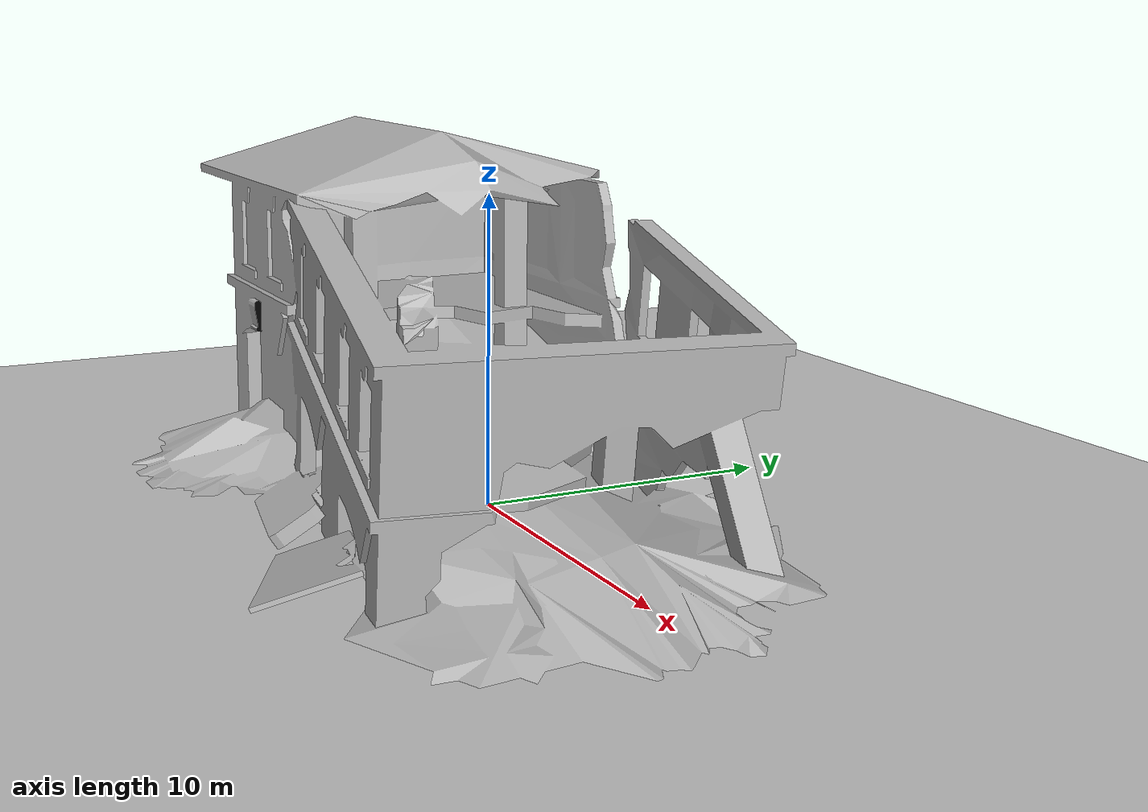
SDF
<sdf version="1.6">
 <world name="default">
  <light name="sun" type="directional">
   <pose>0 0 10 0 -0 0</pose>
   <diffuse>0.8 0.8 0.8 1</diffuse>
   <specular>0.2 0.2 0.2 1</specular>
   <attenuation>
    <range>1000</range>
    <constant>0.9</constant>
    <linear>0.01</linear>
    <quadratic>0.001</quadratic>
   </attenuation>
   <direction>-0.5 0.1 -0.9</direction>
  </light>
  <model name="ground_plane">
   <static>1</static>
   <link name="link">
    <collision name="collision">
     <geometry><plane><normal>0 0 1</normal><size>100 100</size></plane></geometry>
     <surface>
      <contact><collide_bitmask>65535</collide_bitmask></contact>
      <friction><ode><mu>100</mu><mu2>50</mu2></ode></friction>
     </surface>
    </collision>
    <visual name="visual">
     <cast_shadows>0</cast_shadows>
     <geometry><plane><normal>0 0 1</normal><size>100 100</size></plane></geometry>
     <material>
      <script><uri>file://media/materials/scripts/gazebo.material</uri><name>Gazebo/Grey</name></script>
     </material>
    </visual>
   </link>
  </model>
  <gravity>0 0 -9.8</gravity>
  <magnetic_field>6e-06 2.3e-05 -4.2e-05</magnetic_field>
  <atmosphere type="adiabatic"/>
  <physics name="default_physics" default="0" type="ode">
   <max_step_size>0.001</max_step_size>
   <real_time_factor>1</real_time_factor>
   <real_time_update_rate>1000</real_time_update_rate>
  </physics>
  <scene><ambient>0.4 0.4 0.4 1</ambient><background>0.7 0.7 0.7 1</background><shadows>1</shadows></scene>
  <audio><device>default</device></audio>
  <spherical_coordinates>
   <surface_model>EARTH_WGS84</surface_model>
   <latitude_deg>0</latitude_deg>
   <longitude_deg>0</longitude_deg>
   <elevation>0</elevation>
   <heading_deg>0</heading_deg>
  </spherical_coordinates>
  <model name="collapsed_fire_station">
   <static>1</static>
   <link name="link">
    <collision name="collision">
     <geometry><mesh><uri>model://collapsed_fire_station/meshes/collapsed_fire_station.dae</uri></mesh></geometry>
    </collision>
    <visual name="visual">
     <geometry><mesh><uri>model://collapsed_fire_station/meshes/collapsed_fire_station.dae</uri></mesh></geometry>
    </visual>
   </link>
   <pose>-0.038915 -0.617109 0 0 -0 0</pose>
  </model>
  <include><uri>model://bowser2</uri></include>
 </world>
</sdf>

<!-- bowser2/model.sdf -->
<sdf version="1.5">
    <model name="bowser2">
        <pose>0 0 0 0 0 0</pose>
        <static>false</static>
        <link name="bowser2/base_link">
            <inertial>
                <mass>10</mass>
                <inertia> <!-- inertias are tricky to compute -->
                <!-- http://gazebosim.org/tutorials?tut=inertia&cat=build_robot -->
                <ixx>.3735</ixx>
                <ixy>0.0</ixy>            <!-- for a box: ixy = 0 -->
                <ixz>0.0</ixz>            <!-- for a box: ixz = 0 -->
                <iyy>.747</iyy>
                <iyz>0.0</iyz>            <!-- for a box: iyz = 0 -->
                <izz>.9711</izz>
                </inertia>
            </inertial>
            <!-- chassis -->
            <collision name="collision">
                <geometry>
                <box>
                    <size>.9 .6 .3</size>
                </box>
                </geometry>
            </collision>
            <visual name="visual">
                <geometry>
                <box>
                    <size>.9 .6 .3</size>
                </box>
                </geometry>
            </visual>
            <!-- caster -->
            <collision name='caster_collision'>
                <pose>-.35 0 -0.15 0 0 0</pose>
                <geometry>
                    <sphere>
                    <radius>.075</radius>
                </sphere>
                </geometry>
                <surface>
                <friction>
                    <ode>
                    <mu>0</mu>
                    <mu2>0</mu2>
                    <slip1>1.0</slip1>
                    <slip2>1.0</slip2>
                    </ode>
                </friction>
                </surface>
            </collision>
            <visual name='caster_visual'>
                <pose>-.35 0 -.15 0 0 0</pose>
                <geometry>
                <sphere>
                    <radius>.075</radius>
                </sphere>
                </geometry>
            </visual>
        </link>

        <link name="bowser2/front_right_wheel">
            <pose>0.3 -.37 -0.05 0 0 0</pose>
            <inertial>
                <mass>2.6357</mass>
                <pose>0 0 0 0 0 0</pose>
                <inertia>
                    <ixx>0.0246688</ixx>
                    <ixy>0</ixy>
                    <ixz>0</ixz>
                    <iyy>0.0246688</iyy>
                    <iyz>0</iyz>
                    <izz>0.0441058</izz>
                </inertia>
            </inertial>
            <collision name="front_right_wheel_collision">
                <pose>0 0 0 -1.5707 0 0</pose>
                <geometry>
                <cylinder>
                    <radius>0.17775</radius>
                    <length>0.1143</length>
                </cylinder>
                </geometry>
                <surface>
                <friction>
                    <ode>
                    <mu>100000.0</mu>
                    <mu2>100000.0</mu2>
                    <slip1>0.0</slip1>
                    <slip2>0.0</slip2>
                    </ode>
                </friction>
                </surface>
            </collision>
            <visual name="front_right_wheel">
                <pose>0 0 0 -3.14159 0 0</pose>
                <geometry>
                <mesh>
                    <uri>model://husky/meshes/wheel.stl</uri>
                </mesh>
                </geometry>
                <material>
                <script>
                    <name>Gazebo/Grey</name>
                </script>
                </material>
            </visual>
        </link>
        <joint name="bowser2/front_right_joint" type="revolute">
            <parent>bowser2/base_link</parent>
            <child>bowser2/front_right_wheel</child>
            <axis>
                <xyz>0 1 0</xyz>
                <use_parent_model_frame>true</use_parent_model_frame>
            </axis>
            <physics>
                <ode>
                <limit>
                    <cfm>0.000000</cfm>
                    <erp>0.900000</erp>
                </limit>
                </ode>
            </physics>
        </joint>

        <link name="bowser2/front_left_wheel">
            <pose>0.3 .37 -0.05 0 0 0</pose>
            <inertial>
                <mass>2.6357</mass>
                <pose>0 0 0 0 0 0</pose>
                <inertia>
                <ixx>0.0246688</ixx>
                <ixy>0</ixy>
                <ixz>0</ixz>
                <iyy>0.0246688</iyy>
                <iyz>0</iyz>
                <izz>0.0441058</izz>
                </inertia>
            </inertial>
            <collision name="front_left_wheel_collision">
                <pose>0 0 0 -1.5707 0 0</pose>
                <geometry>
                <cylinder>
                    <radius>0.17775</radius>
                    <length>0.1143</length>
                </cylinder>
                </geometry>
                <surface>
                <friction>
                    <ode>
                    <mu>100000.0</mu>
                    <mu2>100000.0</mu2>
                    <slip1>0.0</slip1>
                    <slip2>0.0</slip2>
                    </ode>
                </friction>
                </surface>
            </collision>
            <visual name="front_left_wheel">
                <pose>0 0 0 -3.14159 0 0</pose>
                <geometry>
                <mesh>
                    <uri>model://husky/meshes/wheel.stl</uri>
                </mesh>
                </geometry>
                <material>
                <script>
                    <name>Gazebo/Grey</name>
                </script>
                </material>
            </visual>
        </link>
        <joint name="bowser2/front_left_joint" type="revolute">
            <parent>bowser2/base_link</parent>
            <child>bowser2/front_left_wheel</child>
            <axis>
                <xyz>0 1 0</xyz>
                <use_parent_model_frame>true</use_parent_model_frame>
            </axis>
            <physics>
                <ode>
                <limit>
                    <cfm>0.000000</cfm>
                    <erp>0.900000</erp>
                </limit>
                </ode>
            </physics>
        </joint>

        <!-- IMU sensor -->
        <link name="bowser2/imu_link">
            <visual name="imu_link_visual">
                <geometry>
                    <box>
                        <size> 0.1 0.1 0.1 </size>
                    </box>
                </geometry>
            </visual>
            <collision name="imu_link_collision">
                <geometry>
                    <box>
                        <size> 0.1 0.1 0.1 </size>
                    </box>
                </geometry>
            </collision>

            <sensor name="imu_sensor" type="imu">
                <always_on>true</always_on> <!-- required TRUE -->
                <plugin filename="libgazebo_ros_imu_sensor.so" name="imu_plugin">
                    <robotNamespace>bowser2</robotNamespace>
                    <topicName>imu</topicName>
                    <updateRateHZ>30</updateRateHZ>
                    <frameName>bowser2/imu_link</frameName>
                    <initialOrientationAsReference>false</initialOrientationAsReference>
                </plugin>
            </sensor>
        </link>
        <joint name="bowser2/imu_joint" type="fixed">
            <parent>bowser2/base_link</parent>
            <child>bowser2/imu_link</child>
        </joint>

        <!-- differential drive plugin; publishes odom frame-->
        <plugin filename="libgazebo_ros_diff_drive.so" name="diff_drive_controller">
            <robotNamespace>bowser2</robotNamespace>
            <rosDebugLevel>debug</rosDebugLevel>

            <!-- 'physical' characteristics -->
            <leftJoint>bowser2/front_left_joint</leftJoint>
            <rightJoint>bowser2/front_right_joint</rightJoint>
            <wheelSeparation>0.74</wheelSeparation>
            <wheelDiameter>0.3555</wheelDiameter>
            <wheelTorque>20</wheelTorque>   <!-- in Nm -->

            <!-- plugin characteristics -->
            <odometrySource>world</odometrySource>
            <publishOdom>true</publishOdom>
            <updateRate>100</updateRate>

            <!-- tf -->
            <publishTf>true</publishTf> <!-- publish the transforms -->
            <publishOdomTF>true</publishOdomTF>
            <publishWheelTF>true</publishWheelTF>
            <odometryFrame>bowser2/odom</odometryFrame>
            <robotBaseFrame>bowser2/base_link</robotBaseFrame>

            <!-- ros messaging -->
            <commandTopic>/cmd_vel</commandTopic> <!-- listens to -->
            <odometryTopic>odom</odometryTopic> <!-- publishes on -->
        </plugin>

        <joint name="bowser2/camera_joint" type="fixed">
            <parent>bowser2/base_link</parent>
            <child>bowser2/camera_link</child>
            <axis>
                <xyz>1 0 0</xyz>
                <use_parent_model_frame>true</use_parent_model_frame>
            </axis>
        </joint>
        <!-- houses the depth camera sensor -->
        <link name="bowser2/camera_link">
            <!-- "physical" description of camera -->
            <pose>0 0 0.35 0 0 0</pose>
            <collision name="camera_collision">
                <pose>0 0 0.1 0 0 0</pose>
                <geometry>
                    <box>
                    <size>.1 0.1 0.1</size>
                    </box>
                </geometry>
            </collision>
            <visual name="camera_visual">
                <pose>0 0 0 0 0 0</pose>
                <geometry>
                    <box>
                    <size>.1 0.1 0.1</size>
                    </box>
                </geometry>
                <material>
                    <script>
                    <name>Gazebo/Grey</name>
                    </script>
                </material>
            </visual>

            <sensor type="depth" name="depth_sensor">
                <!-- Set always_on only sensor, not on plugin -->
                <always_on>0</always_on>
                <!-- Set update_rate only sensor, not on plugin -->
                <updateRate>20</updateRate>

                <camera name="bowser2_dc">
                    <horizontal_fov>1.57079</horizontal_fov>
                    <image>
                        <width>640</width>
                        <height>480</height>
                    </image>
                    <clip>
                        <near>0.5</near>
                        <far>20</far>
                    </clip>
                    <!-- no distortions: "ideal" camera -->
                    <distortion>
                        <k1>0.0</k1>
                        <k2>0.0</k2>
                        <k3>0.0</k3>
                        <p1>0.0</p1>
                        <p2>0.0</p2>
                        <center>0.0 0.0</center>
                    </distortion>
                </camera>

                <plugin name="bowser2_camera_plugin" filename="libgazebo_ros_depth_camera.so">
                    <robotNamespace>bowser2</robotNamespace>
                    <always_on>true</always_on>
                    <updateRate>0.0</updateRate> <!-- use sensor rate -->
                    <cameraName>bowser2_dc</cameraName>

                    <baseline>0.05</baseline>
                    <pointCloudCutoff>0.05</pointCloudCutoff>
                    <pointCloudCutoffMax>20</pointCloudCutoffMax>

                    <!-- configure output topics; will be prepended with robotNamespace value (AKA relative names) -->
                    <imageTopicName>image/image</imageTopicName>
                    <cameraInfoTopicName>image/camera_info</cameraInfoTopicName>
                    <depthImageTopicName>depth/image</depthImageTopicName>
                    <depthImageCameraInfoTopicName>depth/camera_info</depthImageCameraInfoTopicName>
                    <pointCloudTopicName>depth/points</pointCloudTopicName>

                    <!-- Set TF frame name. If empty, defaults to link name (i.e. "link_name") -->
                    <frameName>bowser2/camera_link</frameName> <!-- namespaced -->

                    <distortionK1>0.0</distortionK1>
                    <distortionK2>0.0</distortionK2>
                    <distortionK3>0.0</distortionK3>
                    <distortionT1>0.0</distortionT1>
                    <distortionT2>0.0</distortionT2>
                </plugin>
            </sensor>
        </link>

        <joint name="bowser2/lidar_joint" type="fixed">
            <parent>bowser2/base_link</parent>
            <child>bowser2/lidar_link</child>
            <axis>
                <xyz>0 1 0</xyz>
                <use_parent_model_frame>true</use_parent_model_frame>
            </axis>
        </joint>
        <link name="bowser2/lidar_link">
            <!-- "physical" description of lidar -->
            <pose>0.0 0 0.2 0 0 0</pose>
            <collision name="lidar_collision">
                <pose>0 0 0.1 0 0 0</pose>
                <geometry>
                    <box>
                        <size>.1 0.1 0.1</size>
                    </box>
                </geometry>
            </collision>
            <visual name="lidar_visual">
                <pose>0 0 0 0 0 0</pose>
                <geometry>
                    <box>
                        <size>.1 0.1 0.1</size>
                    </box>
                </geometry>
                <material>
                    <script>
                        <name>Gazebo/Grey</name>
                    </script>
                </material>
            </visual>

            <!-- LiDAR -->
            <sensor name="laser_sensor" type="ray">
                <ray>
                    <scan>
                        <horizontal>
                            <samples>256</samples>
                            <resolution>1</resolution>
                            <min_angle>-1.5707</min_angle>
                            <max_angle>1.5707</max_angle>
                        </horizontal>
                    </scan>
                    <range>
                        <min>0.08</min>
                        <max>30</max>
                        <resolution>0.01</resolution>
                    </range>
                </ray>

                <!-- visualizing sensor rays can be resource intensive -->
                <visualize>false</visualize>

                <plugin name='laser_plugin' filename='libgazebo_ros_laser.so'>
                    <robotNamespace>bowser2</robotNamespace>
                    <updateRate>30</updateRate>
                    <topicName>/scan</topicName> <!-- NOT namespaced (/ prefix is absolute topic name) -->
                    <frameName>bowser2/lidar_link</frameName> <!-- prepended with robotNamespace value -->
                    <gaussianNoise>0.01</gaussianNoise>
                </plugin>
            </sensor>
        </link>
    </model>
</sdf>
